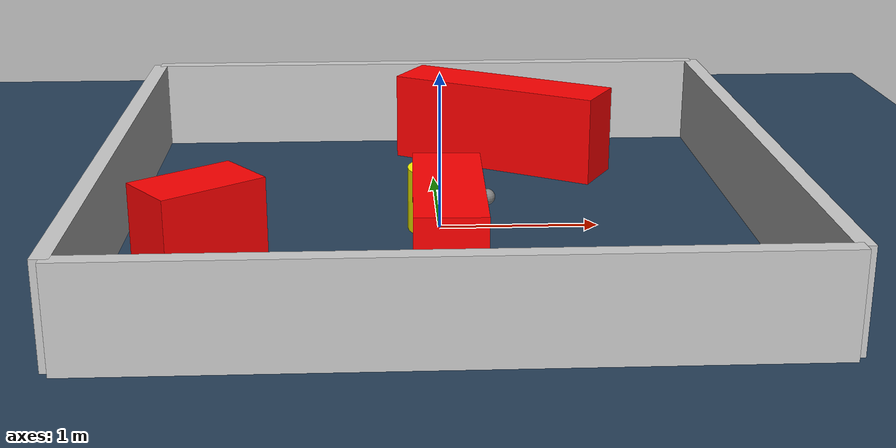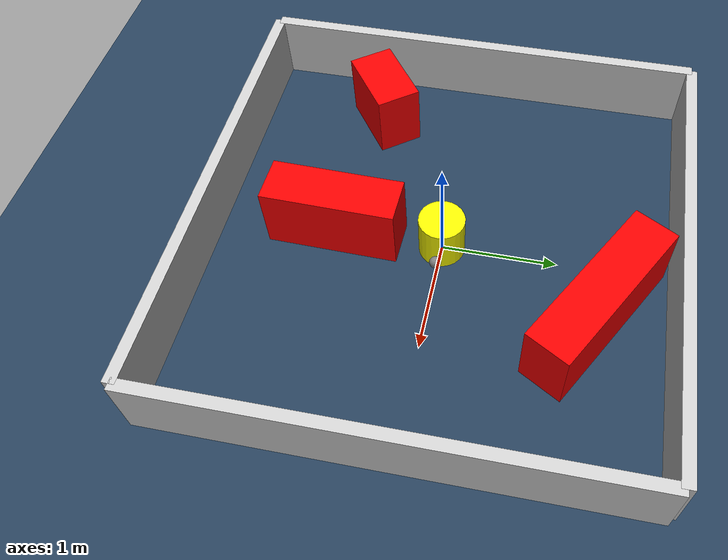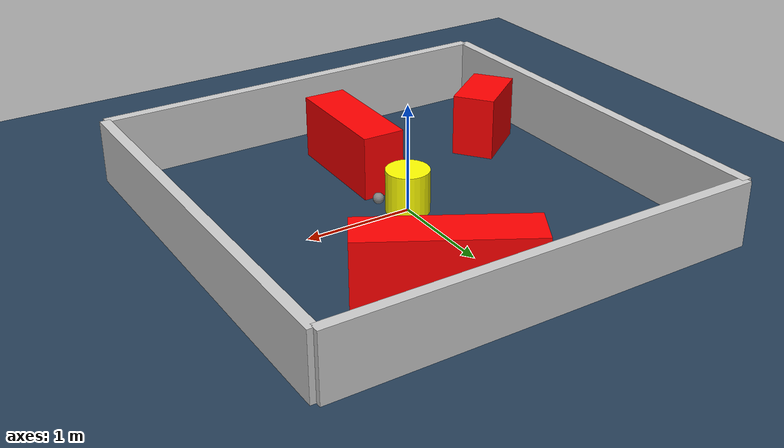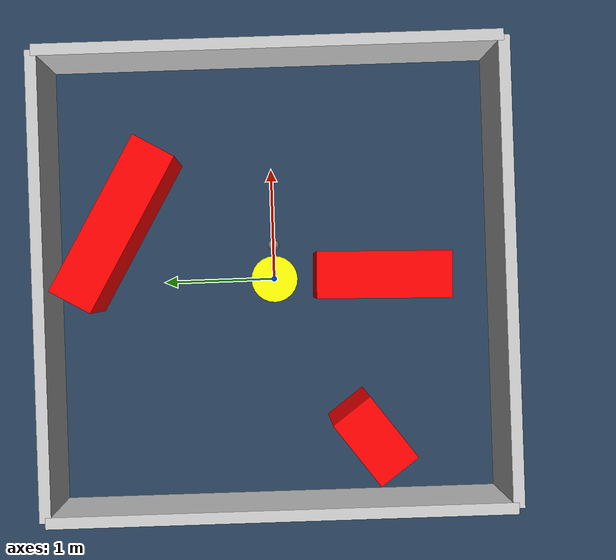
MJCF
<?xml version="1.0" ?>
<mujoco model="generated_environment">
  <option timestep="0.01" integrator="RK4" cone="elliptic"/>
  <default>
    <geom density="1"/>
  </default>
  <asset>
    <texture builtin="gradient" height="3072" rgb1="0.3 0.5 0.7" rgb2="0 0 0" type="skybox" width="512"/>
    <texture builtin="checker" height="300" mark="edge" markrgb="0.8 0.8 0.8" name="groundplane" rgb1="0.2 0.3 0.4" rgb2="0.1 0.2 0.3" type="2d" width="300"/>
    <material name="groundplane" reflectance="0.2" texrepeat="5 5" texture="groundplane" texuniform="true"/>
    <material name="robot" rgba="0.0 1.0 0.0 1"/>
  </asset>
  <worldbody>
    <light dir="0 0 -1" directional="true" pos="0 0 1.5"/>
    <geom condim="4" friction="1.0 0.005 0.001" material="groundplane" name="floor" size="0 0 0.05" type="plane"/>
    <body name="walls">
      <geom name="wall_1" condim="4" pos="-2.0 0.0 0.3" rgba="0.800000011920929 0.800000011920929 0.800000011920929 1.0" size="0.05 2.0 0.3" type="box"/>
      <geom name="wall_2" condim="4" pos="2.0 0.0 0.3" rgba="0.800000011920929 0.800000011920929 0.800000011920929 1.0" size="0.05 2.0 0.3" type="box"/>
      <geom name="wall_3" condim="4" pos="0.0 -2.0 0.3" rgba="0.800000011920929 0.800000011920929 0.800000011920929 1.0" size="2.0 0.05 0.3" type="box"/>
      <geom name="wall_4" condim="4" pos="0.0 2.0 0.3" rgba="0.800000011920929 0.800000011920929 0.800000011920929 1.0" size="2.0 0.05 0.3" type="box"/>
    </body>
    <body name="robot">
      <joint name="joint_x" type="slide" pos="0 0 0" axis="1 0 0"/>
      <joint name="joint_y" type="slide" pos="0 0 0" axis="0 1 0"/>
      <geom name="robot" type="sphere" pos="0.3 0.0 0.2" size="0.05" mass="5." friction="1.0 0.005 0.0001" condim="4" rgba="0.5 0.5 0.5 1.0"/>
      <site name="sensor_ball"/>
    </body>
    <body name="obstacle_movable_1">
      <geom name="obstacle_movable_1" condim="4" pos="0.0 0.0 0.2" euler="0 0 0.0" friction="1.0 0.005 0.001" rgba="1.0 1.0 0.0 1.0" size="0.2 0.2 0.0" type="cylinder" mass="0.1"/>
      <joint type="free"/>
    </body>
    <body name="obstacle_2_static">
      <geom name="obstacle_2_static" condim="4" pos="-1.3994983710814801 -0.8101561990025501 0.3" euler="0 0 36.81033801788574" friction="1.0 0.005 0.001" rgba="1 0 0 1" size="0.3292081729471977 0.2 0.3" type="box"/>
    </body>
    <body name="obstacle_3_static">
      <geom name="obstacle_3_static" condim="4" pos="0.008661261715688262 -0.9291135412168671 0.3" euler="0 0 88.61631487443648" friction="1.0 0.005 0.001" rgba="1 0 0 1" size="0.5730179137038389 0.2 0.3" type="box"/>
    </body>
    <body name="obstacle_4_static">
      <geom name="obstacle_4_static" condim="4" pos="0.5106294304631207 1.36196474625109 0.3" euler="0 0 150.0807387560713" friction="1.0 0.005 0.001" rgba="1 0 0 1" size="0.7527490622124586 0.2 0.3" type="box"/>
    </body>
  </worldbody>
  <actuator>
    <motor name="actuator_x" joint="joint_x" gear="1" ctrlrange="-1 1"/>
    <motor name="actuator_y" joint="joint_y" gear="1" ctrlrange="-1 1"/>
  </actuator>
</mujoco>
